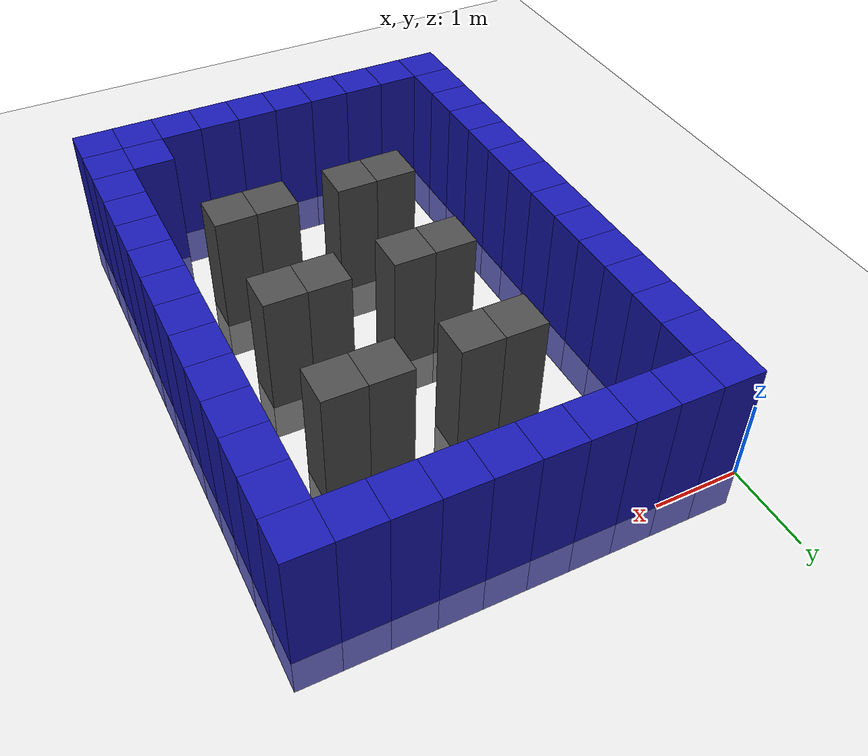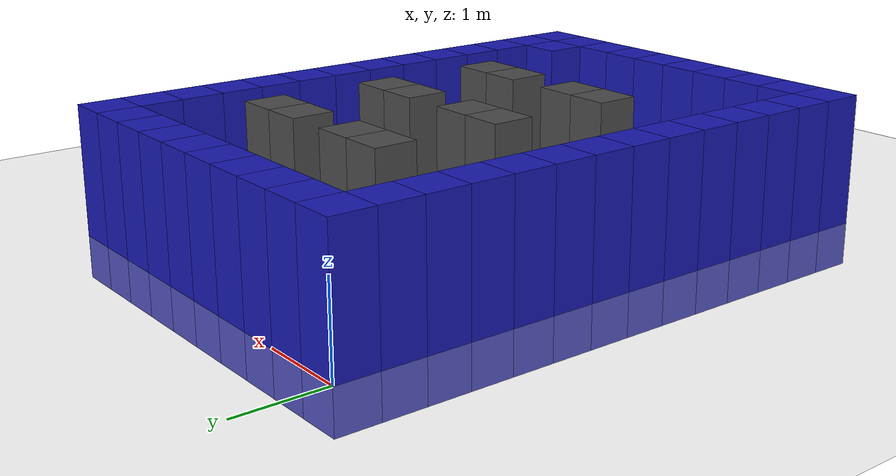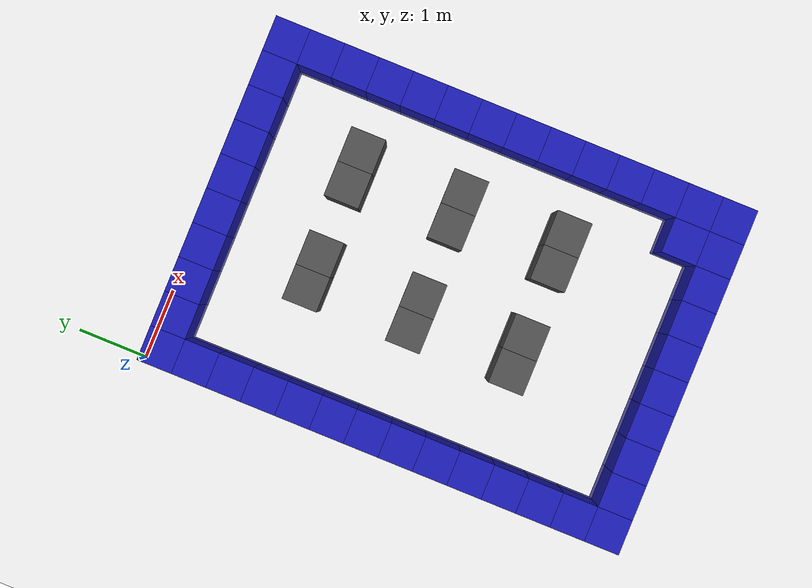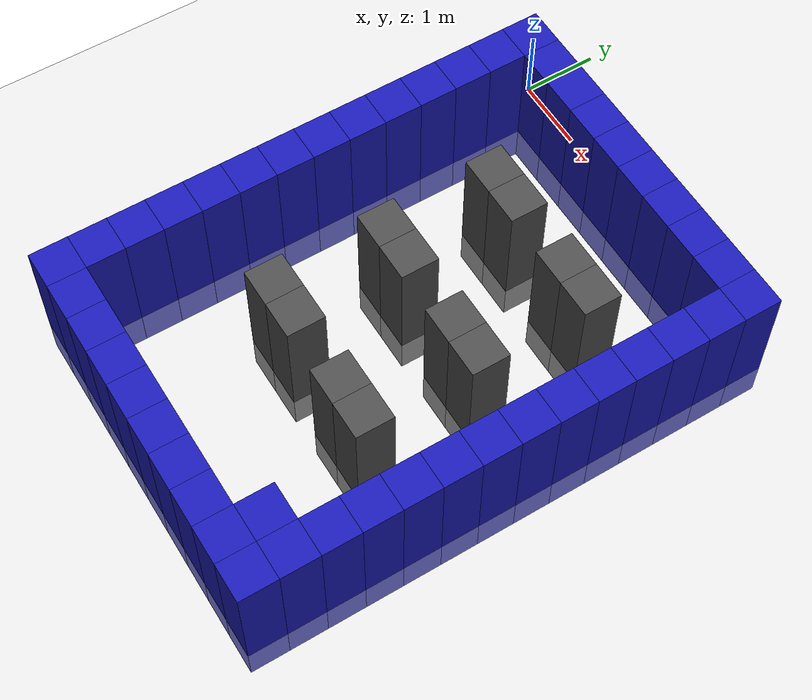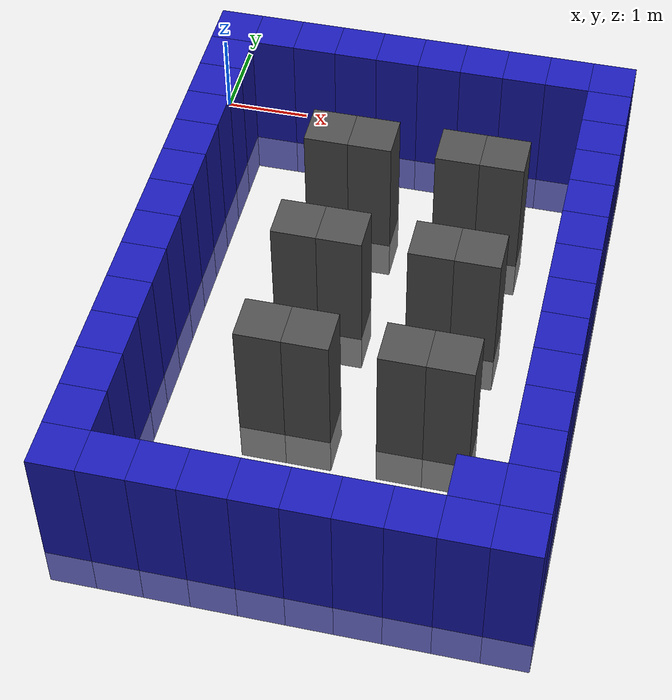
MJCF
<mujoco model='warehouse'>
  <worldbody>
    <geom type='plane' size='50 50 0.1' rgba='0.8 0.8 0.8 1'/>
    <geom type='box' pos='0.25 -0.25 0.5' size='0.25 0.25 1' rgba='0.1 0.1 0.7 1' contype='1' conaffinity='1'/>
    <geom type='box' pos='0.75 -0.25 0.5' size='0.25 0.25 1' rgba='0.1 0.1 0.7 1' contype='1' conaffinity='1'/>
    <geom type='box' pos='1.25 -0.25 0.5' size='0.25 0.25 1' rgba='0.1 0.1 0.7 1' contype='1' conaffinity='1'/>
    <geom type='box' pos='1.75 -0.25 0.5' size='0.25 0.25 1' rgba='0.1 0.1 0.7 1' contype='1' conaffinity='1'/>
    <geom type='box' pos='2.25 -0.25 0.5' size='0.25 0.25 1' rgba='0.1 0.1 0.7 1' contype='1' conaffinity='1'/>
    <geom type='box' pos='2.75 -0.25 0.5' size='0.25 0.25 1' rgba='0.1 0.1 0.7 1' contype='1' conaffinity='1'/>
    <geom type='box' pos='3.25 -0.25 0.5' size='0.25 0.25 1' rgba='0.1 0.1 0.7 1' contype='1' conaffinity='1'/>
    <geom type='box' pos='3.75 -0.25 0.5' size='0.25 0.25 1' rgba='0.1 0.1 0.7 1' contype='1' conaffinity='1'/>
    <geom type='box' pos='4.25 -0.25 0.5' size='0.25 0.25 1' rgba='0.1 0.1 0.7 1' contype='1' conaffinity='1'/>
    <geom type='box' pos='4.75 -0.25 0.5' size='0.25 0.25 1' rgba='0.1 0.1 0.7 1' contype='1' conaffinity='1'/>
    <geom type='box' pos='0.25 -0.75 0.5' size='0.25 0.25 1' rgba='0.1 0.1 0.7 1' contype='1' conaffinity='1'/>
    <geom type='box' pos='4.75 -0.75 0.5' size='0.25 0.25 1' rgba='0.1 0.1 0.7 1' contype='1' conaffinity='1'/>
    <geom type='box' pos='0.25 -1.25 0.5' size='0.25 0.25 1' rgba='0.1 0.1 0.7 1' contype='1' conaffinity='1'/>
    <geom type='box' pos='4.75 -1.25 0.5' size='0.25 0.25 1' rgba='0.1 0.1 0.7 1' contype='1' conaffinity='1'/>
    <geom type='box' pos='0.25 -1.75 0.5' size='0.25 0.25 1' rgba='0.1 0.1 0.7 1' contype='1' conaffinity='1'/>
    <geom type='box' pos='1.75 -1.75 0.5' size='0.25 0.25 1' rgba='0.3 0.3 0.3 1' contype='1' conaffinity='1'/>
    <geom type='box' pos='2.25 -1.75 0.5' size='0.25 0.25 1' rgba='0.3 0.3 0.3 1' contype='1' conaffinity='1'/>
    <geom type='box' pos='3.25 -1.75 0.5' size='0.25 0.25 1' rgba='0.3 0.3 0.3 1' contype='1' conaffinity='1'/>
    <geom type='box' pos='3.75 -1.75 0.5' size='0.25 0.25 1' rgba='0.3 0.3 0.3 1' contype='1' conaffinity='1'/>
    <geom type='box' pos='4.75 -1.75 0.5' size='0.25 0.25 1' rgba='0.1 0.1 0.7 1' contype='1' conaffinity='1'/>
    <geom type='box' pos='0.25 -2.25 0.5' size='0.25 0.25 1' rgba='0.1 0.1 0.7 1' contype='1' conaffinity='1'/>
    <geom type='box' pos='4.75 -2.25 0.5' size='0.25 0.25 1' rgba='0.1 0.1 0.7 1' contype='1' conaffinity='1'/>
    <geom type='box' pos='0.25 -2.75 0.5' size='0.25 0.25 1' rgba='0.1 0.1 0.7 1' contype='1' conaffinity='1'/>
    <geom type='box' pos='4.75 -2.75 0.5' size='0.25 0.25 1' rgba='0.1 0.1 0.7 1' contype='1' conaffinity='1'/>
    <geom type='box' pos='0.25 -3.25 0.5' size='0.25 0.25 1' rgba='0.1 0.1 0.7 1' contype='1' conaffinity='1'/>
    <geom type='box' pos='1.75 -3.25 0.5' size='0.25 0.25 1' rgba='0.3 0.3 0.3 1' contype='1' conaffinity='1'/>
    <geom type='box' pos='2.25 -3.25 0.5' size='0.25 0.25 1' rgba='0.3 0.3 0.3 1' contype='1' conaffinity='1'/>
    <geom type='box' pos='3.25 -3.25 0.5' size='0.25 0.25 1' rgba='0.3 0.3 0.3 1' contype='1' conaffinity='1'/>
    <geom type='box' pos='3.75 -3.25 0.5' size='0.25 0.25 1' rgba='0.3 0.3 0.3 1' contype='1' conaffinity='1'/>
    <geom type='box' pos='4.75 -3.25 0.5' size='0.25 0.25 1' rgba='0.1 0.1 0.7 1' contype='1' conaffinity='1'/>
    <geom type='box' pos='0.25 -3.75 0.5' size='0.25 0.25 1' rgba='0.1 0.1 0.7 1' contype='1' conaffinity='1'/>
    <geom type='box' pos='4.75 -3.75 0.5' size='0.25 0.25 1' rgba='0.1 0.1 0.7 1' contype='1' conaffinity='1'/>
    <geom type='box' pos='0.25 -4.25 0.5' size='0.25 0.25 1' rgba='0.1 0.1 0.7 1' contype='1' conaffinity='1'/>
    <geom type='box' pos='4.75 -4.25 0.5' size='0.25 0.25 1' rgba='0.1 0.1 0.7 1' contype='1' conaffinity='1'/>
    <geom type='box' pos='0.25 -4.75 0.5' size='0.25 0.25 1' rgba='0.1 0.1 0.7 1' contype='1' conaffinity='1'/>
    <geom type='box' pos='1.75 -4.75 0.5' size='0.25 0.25 1' rgba='0.3 0.3 0.3 1' contype='1' conaffinity='1'/>
    <geom type='box' pos='2.25 -4.75 0.5' size='0.25 0.25 1' rgba='0.3 0.3 0.3 1' contype='1' conaffinity='1'/>
    <geom type='box' pos='3.25 -4.75 0.5' size='0.25 0.25 1' rgba='0.3 0.3 0.3 1' contype='1' conaffinity='1'/>
    <geom type='box' pos='3.75 -4.75 0.5' size='0.25 0.25 1' rgba='0.3 0.3 0.3 1' contype='1' conaffinity='1'/>
    <geom type='box' pos='4.75 -4.75 0.5' size='0.25 0.25 1' rgba='0.1 0.1 0.7 1' contype='1' conaffinity='1'/>
    <geom type='box' pos='0.25 -5.25 0.5' size='0.25 0.25 1' rgba='0.1 0.1 0.7 1' contype='1' conaffinity='1'/>
    <geom type='box' pos='4.75 -5.25 0.5' size='0.25 0.25 1' rgba='0.1 0.1 0.7 1' contype='1' conaffinity='1'/>
    <geom type='box' pos='0.25 -5.75 0.5' size='0.25 0.25 1' rgba='0.1 0.1 0.7 1' contype='1' conaffinity='1'/>
    <geom type='box' pos='4.75 -5.75 0.5' size='0.25 0.25 1' rgba='0.1 0.1 0.7 1' contype='1' conaffinity='1'/>
    <geom type='box' pos='0.25 -6.25 0.5' size='0.25 0.25 1' rgba='0.1 0.1 0.7 1' contype='1' conaffinity='1'/>
    <geom type='box' pos='4.25 -6.25 0.5' size='0.25 0.25 1' rgba='0.1 0.1 0.7 1' contype='1' conaffinity='1'/>
    <geom type='box' pos='4.75 -6.25 0.5' size='0.25 0.25 1' rgba='0.1 0.1 0.7 1' contype='1' conaffinity='1'/>
    <geom type='box' pos='0.25 -6.75 0.5' size='0.25 0.25 1' rgba='0.1 0.1 0.7 1' contype='1' conaffinity='1'/>
    <geom type='box' pos='0.75 -6.75 0.5' size='0.25 0.25 1' rgba='0.1 0.1 0.7 1' contype='1' conaffinity='1'/>
    <geom type='box' pos='1.25 -6.75 0.5' size='0.25 0.25 1' rgba='0.1 0.1 0.7 1' contype='1' conaffinity='1'/>
    <geom type='box' pos='1.75 -6.75 0.5' size='0.25 0.25 1' rgba='0.1 0.1 0.7 1' contype='1' conaffinity='1'/>
    <geom type='box' pos='2.25 -6.75 0.5' size='0.25 0.25 1' rgba='0.1 0.1 0.7 1' contype='1' conaffinity='1'/>
    <geom type='box' pos='2.75 -6.75 0.5' size='0.25 0.25 1' rgba='0.1 0.1 0.7 1' contype='1' conaffinity='1'/>
    <geom type='box' pos='3.25 -6.75 0.5' size='0.25 0.25 1' rgba='0.1 0.1 0.7 1' contype='1' conaffinity='1'/>
    <geom type='box' pos='3.75 -6.75 0.5' size='0.25 0.25 1' rgba='0.1 0.1 0.7 1' contype='1' conaffinity='1'/>
    <geom type='box' pos='4.25 -6.75 0.5' size='0.25 0.25 1' rgba='0.1 0.1 0.7 1' contype='1' conaffinity='1'/>
    <geom type='box' pos='4.75 -6.75 0.5' size='0.25 0.25 1' rgba='0.1 0.1 0.7 1' contype='1' conaffinity='1'/>
  </worldbody>
</mujoco>
